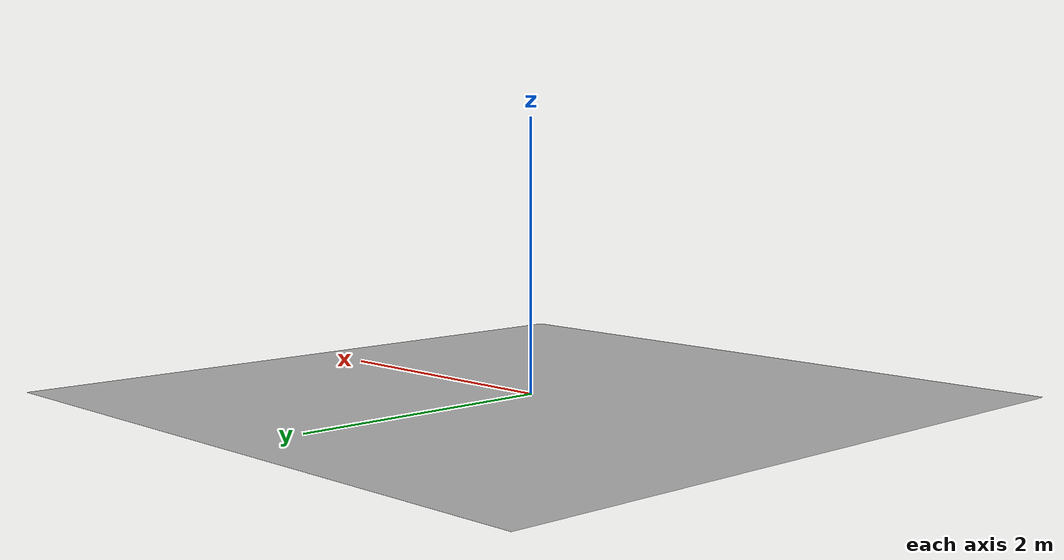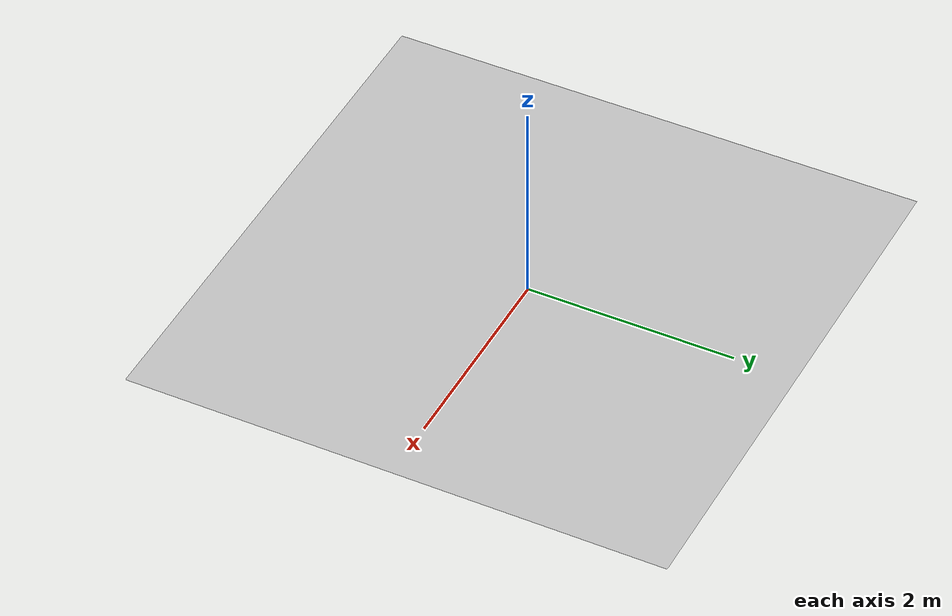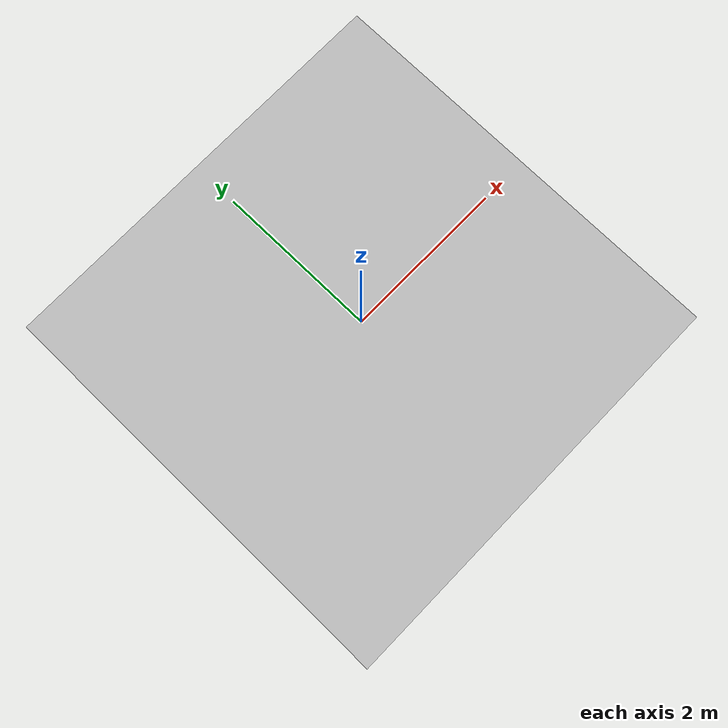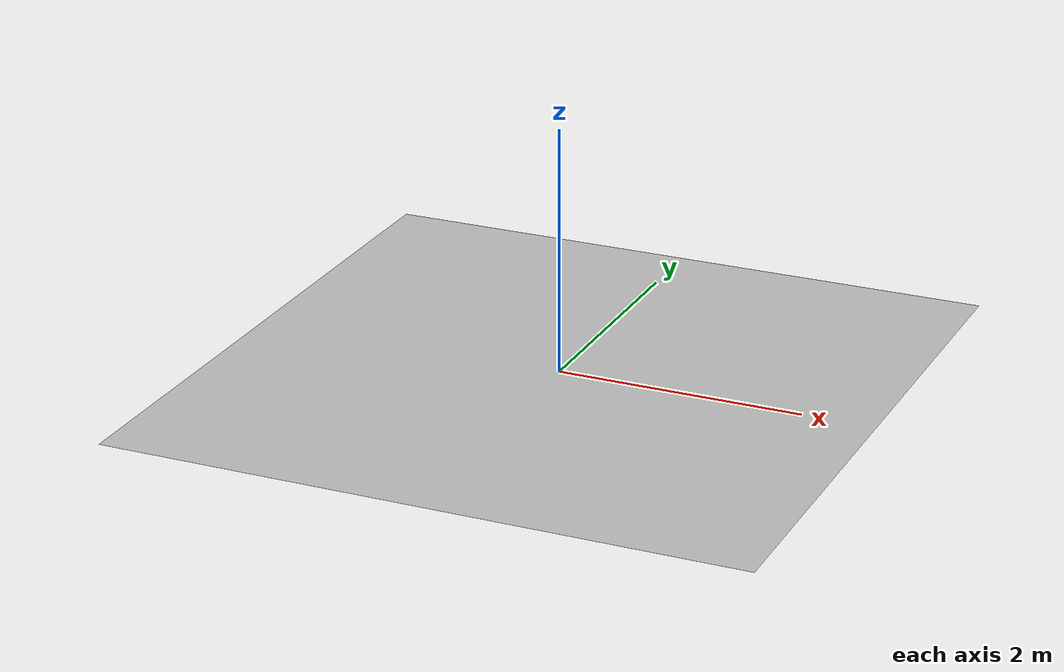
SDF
<?xml version="1.0"?>
<sdf version="1.4">
    <model name="delivery">
      <pose>0 0 0  0 0 0</pose>
      <static>true</static>
      <link name="body">
        <visual name="visual">
          <geometry>
            <mesh><uri>model://delivery/meshes/delivery.obj</uri></mesh>
          </geometry>
        </visual>
      </link>
    </model>
</sdf>
